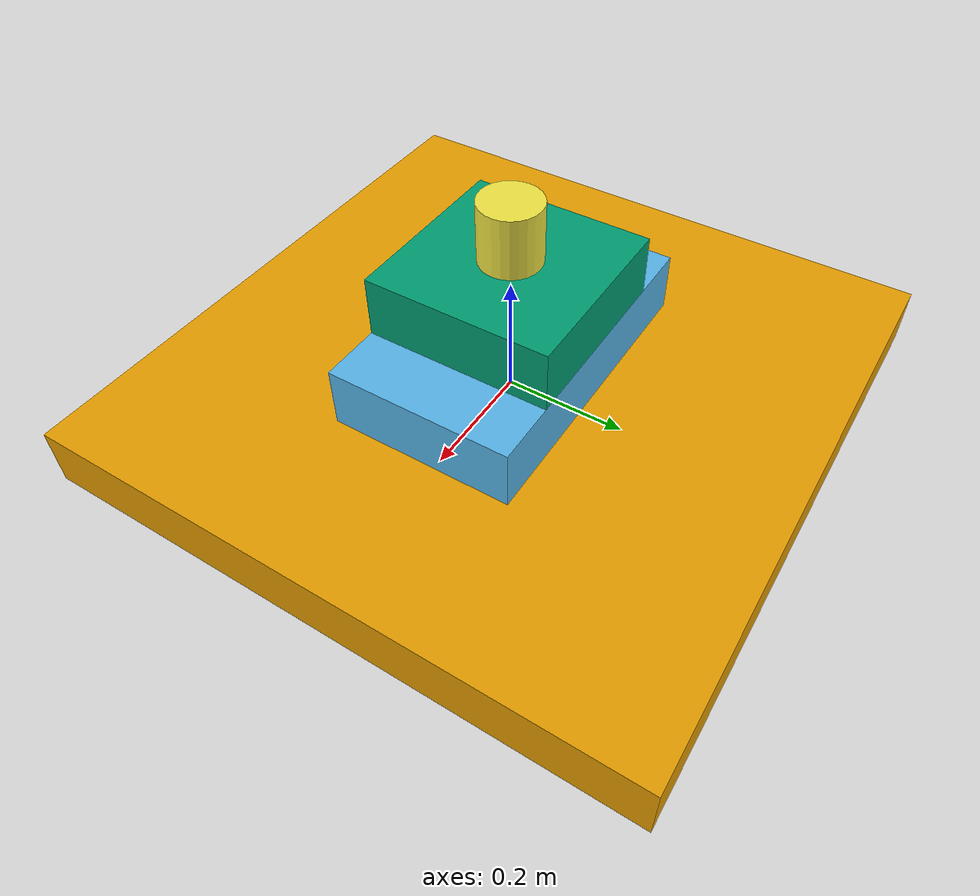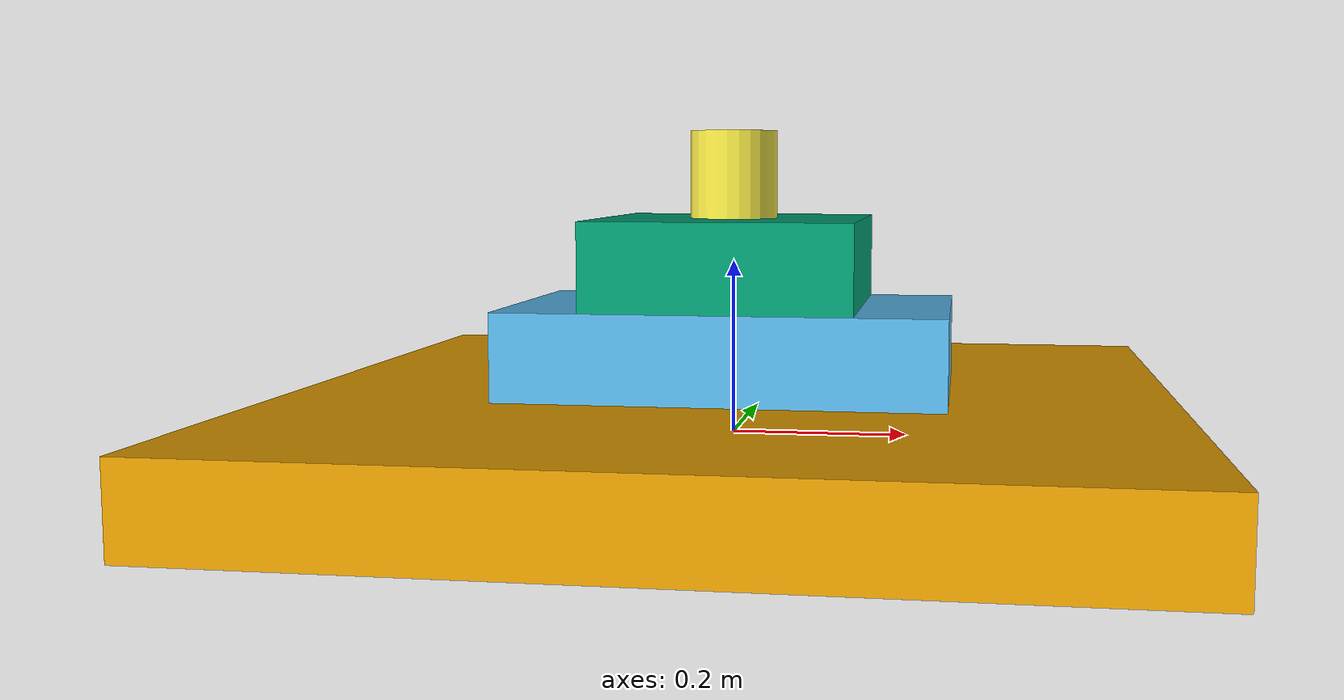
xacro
<?xml version="1.0"?>
<robot name="gantry" xmlns:xacro="http://www.ros.org/wiki/xacro">

  <!-- Simple 3-axis linear gantry -->
  <link name="base_link">
    <visual><geometry><box size="1 1 0.1"/></geometry></visual>
  </link>

  <!-- X-axis -->
  <joint name="x_slide" type="prismatic">
    <parent link="base_link"/>
    <child link="x_carriage"/>
    <origin xyz="0 0 0.1"/>
    <axis xyz="1 0 0"/>
    <limit lower="0" upper="1.0" effort="10" velocity="1"/>
  </joint>

  <link name="x_carriage">
    <visual><geometry><box size="0.5 0.3 0.1"/></geometry></visual>
  </link>

  <!-- Y-axis -->
  <joint name="y_slide" type="prismatic">
    <parent link="x_carriage"/>
    <child link="y_carriage"/>
    <origin xyz="0 0 0.1"/>
    <axis xyz="0 1 0"/>
    <limit lower="0" upper="0.5" effort="10" velocity="1"/>
  </joint>

  <link name="y_carriage">
    <visual><geometry><box size="0.3 0.3 0.1"/></geometry></visual>
  </link>

  <!-- Z-axis -->
  <joint name="z_slide" type="prismatic">
    <parent link="y_carriage"/>
    <child link="tool_head"/>
    <origin xyz="0 0 0.1"/>
    <axis xyz="0 0 1"/>
    <limit lower="0" upper="0.3" effort="10" velocity="1"/>
  </joint>

  <link name="tool_head">
    <visual><geometry><cylinder radius="0.05" length="0.1"/></geometry></visual>
  </link>

</robot>
